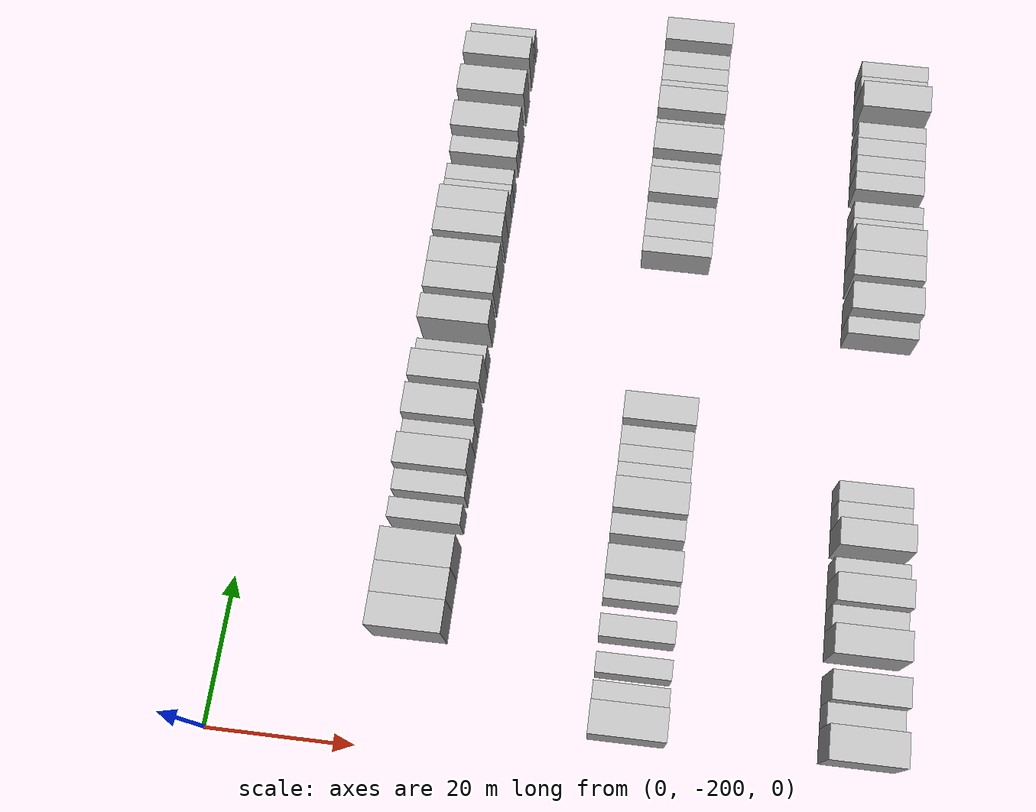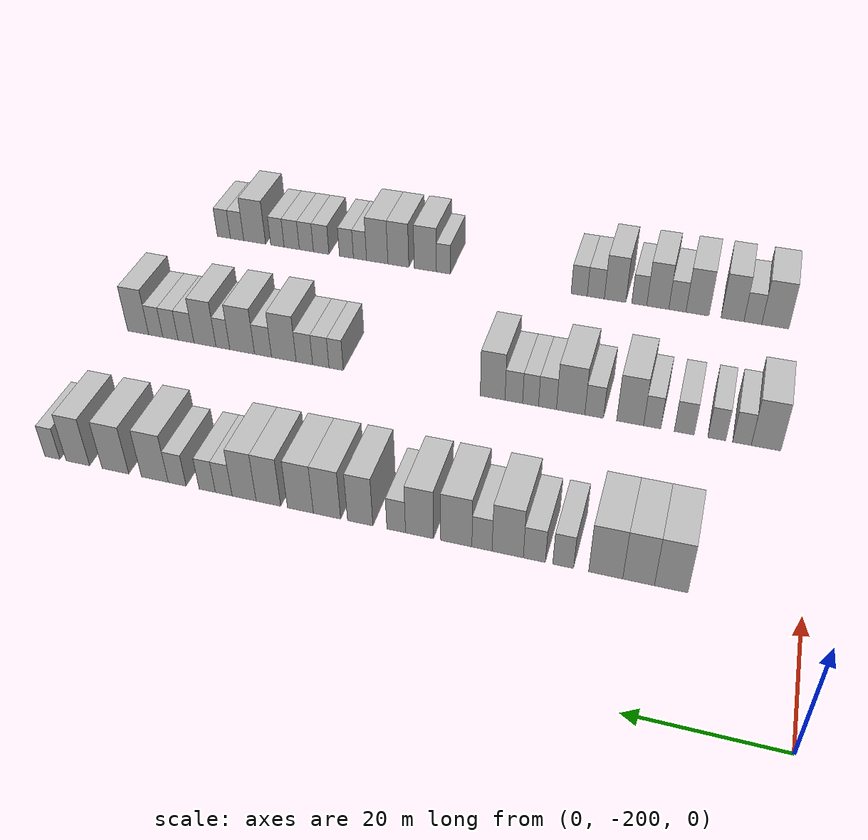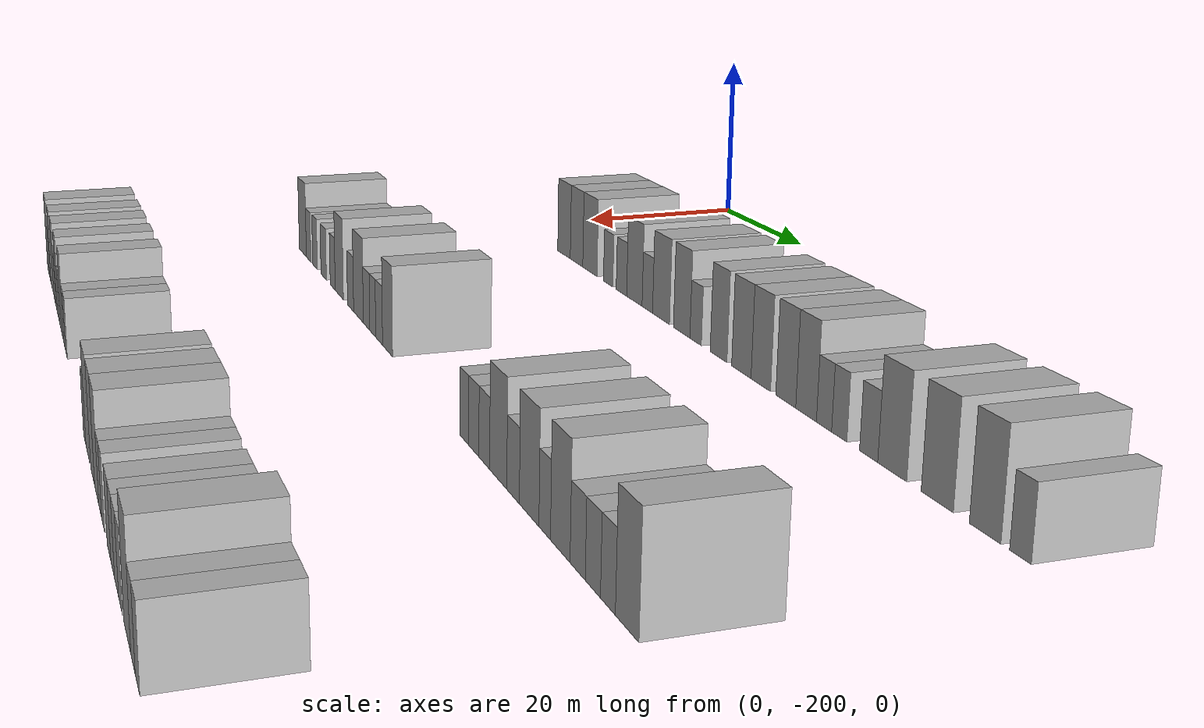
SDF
<sdf version="1.6">
 <world name="default">
  <model name="building_22">
   <static>1</static>
   <pose>25.0000 -183.5145 0 0.000000 0.000000 0.000000</pose>
   <link name="link">
    <pose>0 0 4.50 0 0 0</pose>
    <collision name="collision"><geometry><box><size>10.0000 4.3092 9.0000</size></box></geometry></collision>
    <visual name="visual">
     <cast_shadows>0</cast_shadows>
     <geometry><box><size>10.0000 4.3092 9.0000</size></box></geometry>
     <material>
      <script>
       <uri>model://HANNAS_wall/materials/scripts</uri>
       <uri>model://HANNAS_wall/materials/textures</uri>
       <name>vrc/HANNAS_wall</name>
      </script>
     </material>
    </visual>
   </link>
  </model>
  <model name="building_23">
   <static>1</static>
   <pose>25.0000 -179.2970 0 0.000000 0.000000 0.000000</pose>
   <link name="link">
    <pose>0 0 4.50 0 0 0</pose>
    <collision name="collision"><geometry><box><size>10.0000 4.1258 9.0000</size></box></geometry></collision>
    <visual name="visual">
     <cast_shadows>0</cast_shadows>
     <geometry><box><size>10.0000 4.1258 9.0000</size></box></geometry>
     <material>
      <script>
       <uri>model://HANNAS_wall/materials/scripts</uri>
       <uri>model://HANNAS_wall/materials/textures</uri>
       <name>vrc/HANNAS_wall</name>
      </script>
     </material>
    </visual>
   </link>
  </model>
  <model name="building_24">
   <static>1</static>
   <pose>25.0000 -174.9847 0 0.000000 0.000000 0.000000</pose>
   <link name="link">
    <pose>0 0 4.50 0 0 0</pose>
    <collision name="collision"><geometry><box><size>10.0000 4.4987 9.0000</size></box></geometry></collision>
    <visual name="visual">
     <cast_shadows>0</cast_shadows>
     <geometry><box><size>10.0000 4.4987 9.0000</size></box></geometry>
     <material>
      <script>
       <uri>model://HANNAS_wall/materials/scripts</uri>
       <uri>model://HANNAS_wall/materials/textures</uri>
       <name>vrc/HANNAS_wall</name>
      </script>
     </material>
    </visual>
   </link>
  </model>
  <model name="building_25">
   <static>1</static>
   <pose>25.0000 -169.3413 0 0.000000 0.000000 0.000000</pose>
   <link name="link">
    <pose>0 0 3.00 0 0 0</pose>
    <collision name="collision"><geometry><box><size>10.0000 2.7881 6.0000</size></box></geometry></collision>
    <visual name="visual">
     <cast_shadows>0</cast_shadows>
     <geometry><box><size>10.0000 2.7881 6.0000</size></box></geometry>
     <material>
      <script>
       <uri>model://HANNAS_wall/materials/scripts</uri>
       <uri>model://HANNAS_wall/materials/textures</uri>
       <name>vrc/HANNAS_wall</name>
      </script>
     </material>
    </visual>
   </link>
  </model>
  <model name="building_26">
   <static>1</static>
   <pose>25.0000 -165.4572 0 0.000000 0.000000 0.000000</pose>
   <link name="link">
    <pose>0 0 3.00 0 0 0</pose>
    <collision name="collision"><geometry><box><size>10.0000 2.9801 6.0000</size></box></geometry></collision>
    <visual name="visual">
     <cast_shadows>0</cast_shadows>
     <geometry><box><size>10.0000 2.9801 6.0000</size></box></geometry>
     <material>
      <script>
       <uri>model://HANNAS_wall/materials/scripts</uri>
       <uri>model://HANNAS_wall/materials/textures</uri>
       <name>vrc/HANNAS_wall</name>
      </script>
     </material>
    </visual>
   </link>
  </model>
  <model name="building_27">
   <static>1</static>
   <pose>25.0000 -161.8322 0 0.000000 0.000000 0.000000</pose>
   <link name="link">
    <pose>0 0 4.50 0 0 0</pose>
    <collision name="collision"><geometry><box><size>10.0000 4.2700 9.0000</size></box></geometry></collision>
    <visual name="visual">
     <cast_shadows>0</cast_shadows>
     <geometry><box><size>10.0000 4.2700 9.0000</size></box></geometry>
     <material>
      <script>
       <uri>model://HANNAS_wall/materials/scripts</uri>
       <uri>model://HANNAS_wall/materials/textures</uri>
       <name>vrc/HANNAS_wall</name>
      </script>
     </material>
    </visual>
   </link>
  </model>
  <model name="building_28">
   <static>1</static>
   <pose>25.0000 -158.3071 0 0.000000 0.000000 0.000000</pose>
   <link name="link">
    <pose>0 0 3.00 0 0 0</pose>
    <collision name="collision"><geometry><box><size>10.0000 2.7801 6.0000</size></box></geometry></collision>
    <visual name="visual">
     <cast_shadows>0</cast_shadows>
     <geometry><box><size>10.0000 2.7801 6.0000</size></box></geometry>
     <material>
      <script>
       <uri>model://HANNAS_wall/materials/scripts</uri>
       <uri>model://HANNAS_wall/materials/textures</uri>
       <name>vrc/HANNAS_wall</name>
      </script>
     </material>
    </visual>
   </link>
  </model>
  <model name="building_29">
   <static>1</static>
   <pose>25.0000 -154.7487 0 0.000000 0.000000 0.000000</pose>
   <link name="link">
    <pose>0 0 4.50 0 0 0</pose>
    <collision name="collision"><geometry><box><size>10.0000 4.3368 9.0000</size></box></geometry></collision>
    <visual name="visual">
     <cast_shadows>0</cast_shadows>
     <geometry><box><size>10.0000 4.3368 9.0000</size></box></geometry>
     <material>
      <script>
       <uri>model://HANNAS_wall/materials/scripts</uri>
       <uri>model://HANNAS_wall/materials/textures</uri>
       <name>vrc/HANNAS_wall</name>
      </script>
     </material>
    </visual>
   </link>
  </model>
  <model name="building_30">
   <static>1</static>
   <pose>25.0000 -149.6005 0 0.000000 0.000000 0.000000</pose>
   <link name="link">
    <pose>0 0 4.50 0 0 0</pose>
    <collision name="collision"><geometry><box><size>10.0000 3.9595 9.0000</size></box></geometry></collision>
    <visual name="visual">
     <cast_shadows>0</cast_shadows>
     <geometry><box><size>10.0000 3.9595 9.0000</size></box></geometry>
     <material>
      <script>
       <uri>model://HANNAS_wall/materials/scripts</uri>
       <uri>model://HANNAS_wall/materials/textures</uri>
       <name>vrc/HANNAS_wall</name>
      </script>
     </material>
    </visual>
   </link>
  </model>
  <model name="building_31">
   <static>1</static>
   <pose>25.0000 -146.2920 0 0.000000 0.000000 0.000000</pose>
   <link name="link">
    <pose>0 0 3.00 0 0 0</pose>
    <collision name="collision"><geometry><box><size>10.0000 2.6577 6.0000</size></box></geometry></collision>
    <visual name="visual">
     <cast_shadows>0</cast_shadows>
     <geometry><box><size>10.0000 2.6577 6.0000</size></box></geometry>
     <material>
      <script>
       <uri>model://HANNAS_wall/materials/scripts</uri>
       <uri>model://HANNAS_wall/materials/textures</uri>
       <name>vrc/HANNAS_wall</name>
      </script>
     </material>
    </visual>
   </link>
  </model>
  <model name="building_32">
   <static>1</static>
   <pose>25.0000 -141.1317 0 0.000000 0.000000 0.000000</pose>
   <link name="link">
    <pose>0 0 4.50 0 0 0</pose>
    <collision name="collision"><geometry><box><size>10.0000 3.6628 9.0000</size></box></geometry></collision>
    <visual name="visual">
     <cast_shadows>0</cast_shadows>
     <geometry><box><size>10.0000 3.6628 9.0000</size></box></geometry>
     <material>
      <script>
       <uri>model://HANNAS_wall/materials/scripts</uri>
       <uri>model://HANNAS_wall/materials/textures</uri>
       <name>vrc/HANNAS_wall</name>
      </script>
     </material>
    </visual>
   </link>
  </model>
  <model name="building_33">
   <static>1</static>
   <pose>25.0000 -136.3058 0 0.000000 0.000000 0.000000</pose>
   <link name="link">
    <pose>0 0 4.50 0 0 0</pose>
    <collision name="collision"><geometry><box><size>10.0000 3.9890 9.0000</size></box></geometry></collision>
    <visual name="visual">
     <cast_shadows>0</cast_shadows>
     <geometry><box><size>10.0000 3.9890 9.0000</size></box></geometry>
     <material>
      <script>
       <uri>model://HANNAS_wall/materials/scripts</uri>
       <uri>model://HANNAS_wall/materials/textures</uri>
       <name>vrc/HANNAS_wall</name>
      </script>
     </material>
    </visual>
   </link>
  </model>
  <model name="building_34">
   <static>1</static>
   <pose>25.0000 -132.3958 0 0.000000 0.000000 0.000000</pose>
   <link name="link">
    <pose>0 0 4.50 0 0 0</pose>
    <collision name="collision"><geometry><box><size>10.0000 3.8310 9.0000</size></box></geometry></collision>
    <visual name="visual">
     <cast_shadows>0</cast_shadows>
     <geometry><box><size>10.0000 3.8310 9.0000</size></box></geometry>
     <material>
      <script>
       <uri>model://HANNAS_wall/materials/scripts</uri>
       <uri>model://HANNAS_wall/materials/textures</uri>
       <name>vrc/HANNAS_wall</name>
      </script>
     </material>
    </visual>
   </link>
  </model>
  <model name="building_35">
   <static>1</static>
   <pose>25.0000 -127.6404 0 0.000000 0.000000 0.000000</pose>
   <link name="link">
    <pose>0 0 4.50 0 0 0</pose>
    <collision name="collision"><geometry><box><size>10.0000 3.6797 9.0000</size></box></geometry></collision>
    <visual name="visual">
     <cast_shadows>0</cast_shadows>
     <geometry><box><size>10.0000 3.6797 9.0000</size></box></geometry>
     <material>
      <script>
       <uri>model://HANNAS_wall/materials/scripts</uri>
       <uri>model://HANNAS_wall/materials/textures</uri>
       <name>vrc/HANNAS_wall</name>
      </script>
     </material>
    </visual>
   </link>
  </model>
  <model name="building_36">
   <static>1</static>
   <pose>25.0000 -123.9842 0 0.000000 0.000000 0.000000</pose>
   <link name="link">
    <pose>0 0 4.50 0 0 0</pose>
    <collision name="collision"><geometry><box><size>10.0000 3.6327 9.0000</size></box></geometry></collision>
    <visual name="visual">
     <cast_shadows>0</cast_shadows>
     <geometry><box><size>10.0000 3.6327 9.0000</size></box></geometry>
     <material>
      <script>
       <uri>model://HANNAS_wall/materials/scripts</uri>
       <uri>model://HANNAS_wall/materials/textures</uri>
       <name>vrc/HANNAS_wall</name>
      </script>
     </material>
    </visual>
   </link>
  </model>
  <model name="building_37">
   <static>1</static>
   <pose>25.0000 -120.8901 0 0.000000 0.000000 0.000000</pose>
   <link name="link">
    <pose>0 0 3.00 0 0 0</pose>
    <collision name="collision"><geometry><box><size>10.0000 2.5555 6.0000</size></box></geometry></collision>
    <visual name="visual">
     <cast_shadows>0</cast_shadows>
     <geometry><box><size>10.0000 2.5555 6.0000</size></box></geometry>
     <material>
      <script>
       <uri>model://HANNAS_wall/materials/scripts</uri>
       <uri>model://HANNAS_wall/materials/textures</uri>
       <name>vrc/HANNAS_wall</name>
      </script>
     </material>
    </visual>
   </link>
  </model>
  <model name="building_38">
   <static>1</static>
   <pose>25.0000 -118.3707 0 0.000000 0.000000 0.000000</pose>
   <link name="link">
    <pose>0 0 3.00 0 0 0</pose>
    <collision name="collision"><geometry><box><size>10.0000 2.4834 6.0000</size></box></geometry></collision>
    <visual name="visual">
     <cast_shadows>0</cast_shadows>
     <geometry><box><size>10.0000 2.4834 6.0000</size></box></geometry>
     <material>
      <script>
       <uri>model://HANNAS_wall/materials/scripts</uri>
       <uri>model://HANNAS_wall/materials/textures</uri>
       <name>vrc/HANNAS_wall</name>
      </script>
     </material>
    </visual>
   </link>
  </model>
  <model name="building_39">
   <static>1</static>
   <pose>25.0000 -113.7421 0 0.000000 0.000000 0.000000</pose>
   <link name="link">
    <pose>0 0 3.00 0 0 0</pose>
    <collision name="collision"><geometry><box><size>10.0000 2.7738 6.0000</size></box></geometry></collision>
    <visual name="visual">
     <cast_shadows>0</cast_shadows>
     <geometry><box><size>10.0000 2.7738 6.0000</size></box></geometry>
     <material>
      <script>
       <uri>model://HANNAS_wall/materials/scripts</uri>
       <uri>model://HANNAS_wall/materials/textures</uri>
       <name>vrc/HANNAS_wall</name>
      </script>
     </material>
    </visual>
   </link>
  </model>
  <model name="building_40">
   <static>1</static>
   <pose>25.0000 -110.2601 0 0.000000 0.000000 0.000000</pose>
   <link name="link">
    <pose>0 0 4.50 0 0 0</pose>
    <collision name="collision"><geometry><box><size>10.0000 4.1903 9.0000</size></box></geometry></collision>
    <visual name="visual">
     <cast_shadows>0</cast_shadows>
     <geometry><box><size>10.0000 4.1903 9.0000</size></box></geometry>
     <material>
      <script>
       <uri>model://HANNAS_wall/materials/scripts</uri>
       <uri>model://HANNAS_wall/materials/textures</uri>
       <name>vrc/HANNAS_wall</name>
      </script>
     </material>
    </visual>
   </link>
  </model>
  <model name="building_41">
   <static>1</static>
   <pose>25.0000 -104.0432 0 0.000000 0.000000 0.000000</pose>
   <link name="link">
    <pose>0 0 4.50 0 0 0</pose>
    <collision name="collision"><geometry><box><size>10.0000 4.2435 9.0000</size></box></geometry></collision>
    <visual name="visual">
     <cast_shadows>0</cast_shadows>
     <geometry><box><size>10.0000 4.2435 9.0000</size></box></geometry>
     <material>
      <script>
       <uri>model://HANNAS_wall/materials/scripts</uri>
       <uri>model://HANNAS_wall/materials/textures</uri>
       <name>vrc/HANNAS_wall</name>
      </script>
     </material>
    </visual>
   </link>
  </model>
  <model name="building_42">
   <static>1</static>
   <pose>25.0000 -98.0286 0 0.000000 0.000000 0.000000</pose>
   <link name="link">
    <pose>0 0 4.50 0 0 0</pose>
    <collision name="collision"><geometry><box><size>10.0000 3.7858 9.0000</size></box></geometry></collision>
    <visual name="visual">
     <cast_shadows>0</cast_shadows>
     <geometry><box><size>10.0000 3.7858 9.0000</size></box></geometry>
     <material>
      <script>
       <uri>model://HANNAS_wall/materials/scripts</uri>
       <uri>model://HANNAS_wall/materials/textures</uri>
       <name>vrc/HANNAS_wall</name>
      </script>
     </material>
    </visual>
   </link>
  </model>
  <model name="building_43">
   <static>1</static>
   <pose>25.0000 -93.9180 0 0.000000 0.000000 0.000000</pose>
   <link name="link">
    <pose>0 0 3.00 0 0 0</pose>
    <collision name="collision"><geometry><box><size>10.0000 2.4353 6.0000</size></box></geometry></collision>
    <visual name="visual">
     <cast_shadows>0</cast_shadows>
     <geometry><box><size>10.0000 2.4353 6.0000</size></box></geometry>
     <material>
      <script>
       <uri>model://HANNAS_wall/materials/scripts</uri>
       <uri>model://HANNAS_wall/materials/textures</uri>
       <name>vrc/HANNAS_wall</name>
      </script>
     </material>
    </visual>
   </link>
  </model>
  <model name="building_165">
   <static>1</static>
   <pose>55.0000 -193.5986 0 0.000000 0.000000 0.000000</pose>
   <link name="link">
    <pose>0 0 4.50 0 0 0</pose>
    <collision name="collision"><geometry><box><size>10.0000 4.2606 9.0000</size></box></geometry></collision>
    <visual name="visual">
     <cast_shadows>0</cast_shadows>
     <geometry><box><size>10.0000 4.2606 9.0000</size></box></geometry>
     <material>
      <script>
       <uri>model://HANNAS_wall/materials/scripts</uri>
       <uri>model://HANNAS_wall/materials/textures</uri>
       <name>vrc/HANNAS_wall</name>
      </script>
     </material>
    </visual>
   </link>
  </model>
  <model name="building_166">
   <static>1</static>
   <pose>55.0000 -190.1211 0 0.000000 0.000000 0.000000</pose>
   <link name="link">
    <pose>0 0 3.00 0 0 0</pose>
    <collision name="collision"><geometry><box><size>10.0000 2.6943 6.0000</size></box></geometry></collision>
    <visual name="visual">
     <cast_shadows>0</cast_shadows>
     <geometry><box><size>10.0000 2.6943 6.0000</size></box></geometry>
     <material>
      <script>
       <uri>model://HANNAS_wall/materials/scripts</uri>
       <uri>model://HANNAS_wall/materials/textures</uri>
       <name>vrc/HANNAS_wall</name>
      </script>
     </material>
    </visual>
   </link>
  </model>
  <model name="building_167">
   <static>1</static>
   <pose>55.0000 -186.4602 0 0.000000 0.000000 0.000000</pose>
   <link name="link">
    <pose>0 0 3.00 0 0 0</pose>
    <collision name="collision"><geometry><box><size>10.0000 2.6276 6.0000</size></box></geometry></collision>
    <visual name="visual">
     <cast_shadows>0</cast_shadows>
     <geometry><box><size>10.0000 2.6276 6.0000</size></box></geometry>
     <material>
      <script>
       <uri>model://HANNAS_wall/materials/scripts</uri>
       <uri>model://HANNAS_wall/materials/textures</uri>
       <name>vrc/HANNAS_wall</name>
      </script>
     </material>
    </visual>
   </link>
  </model>
  <model name="building_168">
   <static>1</static>
   <pose>55.0000 -181.6680 0 0.000000 0.000000 0.000000</pose>
   <link name="link">
    <pose>0 0 3.00 0 0 0</pose>
    <collision name="collision"><geometry><box><size>10.0000 2.9568 6.0000</size></box></geometry></collision>
    <visual name="visual">
     <cast_shadows>0</cast_shadows>
     <geometry><box><size>10.0000 2.9568 6.0000</size></box></geometry>
     <material>
      <script>
       <uri>model://HANNAS_wall/materials/scripts</uri>
       <uri>model://HANNAS_wall/materials/textures</uri>
       <name>vrc/HANNAS_wall</name>
      </script>
     </material>
    </visual>
   </link>
  </model>
  <model name="building_169">
   <static>1</static>
   <pose>55.0000 -176.8998 0 0.000000 0.000000 0.000000</pose>
   <link name="link">
    <pose>0 0 3.00 0 0 0</pose>
    <collision name="collision"><geometry><box><size>10.0000 2.5796 6.0000</size></box></geometry></collision>
    <visual name="visual">
     <cast_shadows>0</cast_shadows>
     <geometry><box><size>10.0000 2.5796 6.0000</size></box></geometry>
     <material>
      <script>
       <uri>model://HANNAS_wall/materials/scripts</uri>
       <uri>model://HANNAS_wall/materials/textures</uri>
       <name>vrc/HANNAS_wall</name>
      </script>
     </material>
    </visual>
   </link>
  </model>
  <model name="building_170">
   <static>1</static>
   <pose>55.0000 -173.5760 0 0.000000 0.000000 0.000000</pose>
   <link name="link">
    <pose>0 0 4.50 0 0 0</pose>
    <collision name="collision"><geometry><box><size>10.0000 4.0680 9.0000</size></box></geometry></collision>
    <visual name="visual">
     <cast_shadows>0</cast_shadows>
     <geometry><box><size>10.0000 4.0680 9.0000</size></box></geometry>
     <material>
      <script>
       <uri>model://HANNAS_wall/materials/scripts</uri>
       <uri>model://HANNAS_wall/materials/textures</uri>
       <name>vrc/HANNAS_wall</name>
      </script>
     </material>
    </visual>
   </link>
  </model>
  <model name="building_171">
   <static>1</static>
   <pose>55.0000 -168.1138 0 0.000000 0.000000 0.000000</pose>
   <link name="link">
    <pose>0 0 3.00 0 0 0</pose>
    <collision name="collision"><geometry><box><size>10.0000 2.8563 6.0000</size></box></geometry></collision>
    <visual name="visual">
     <cast_shadows>0</cast_shadows>
     <geometry><box><size>10.0000 2.8563 6.0000</size></box></geometry>
     <material>
      <script>
       <uri>model://HANNAS_wall/materials/scripts</uri>
       <uri>model://HANNAS_wall/materials/textures</uri>
       <name>vrc/HANNAS_wall</name>
      </script>
     </material>
    </visual>
   </link>
  </model>
  <model name="building_172">
   <static>1</static>
   <pose>55.0000 -164.4946 0 0.000000 0.000000 0.000000</pose>
   <link name="link">
    <pose>0 0 4.50 0 0 0</pose>
    <collision name="collision"><geometry><box><size>10.0000 4.3822 9.0000</size></box></geometry></collision>
    <visual name="visual">
     <cast_shadows>0</cast_shadows>
     <geometry><box><size>10.0000 4.3822 9.0000</size></box></geometry>
     <material>
      <script>
       <uri>model://HANNAS_wall/materials/scripts</uri>
       <uri>model://HANNAS_wall/materials/textures</uri>
       <name>vrc/HANNAS_wall</name>
      </script>
     </material>
    </visual>
   </link>
  </model>
  <model name="building_173">
   <static>1</static>
   <pose>55.0000 -160.9096 0 0.000000 0.000000 0.000000</pose>
   <link name="link">
    <pose>0 0 3.00 0 0 0</pose>
    <collision name="collision"><geometry><box><size>10.0000 2.7878 6.0000</size></box></geometry></collision>
    <visual name="visual">
     <cast_shadows>0</cast_shadows>
     <geometry><box><size>10.0000 2.7878 6.0000</size></box></geometry>
     <material>
      <script>
       <uri>model://HANNAS_wall/materials/scripts</uri>
       <uri>model://HANNAS_wall/materials/textures</uri>
       <name>vrc/HANNAS_wall</name>
      </script>
     </material>
    </visual>
   </link>
  </model>
  <model name="building_174">
   <static>1</static>
   <pose>55.0000 -158.2679 0 0.000000 0.000000 0.000000</pose>
   <link name="link">
    <pose>0 0 3.00 0 0 0</pose>
    <collision name="collision"><geometry><box><size>10.0000 2.4956 6.0000</size></box></geometry></collision>
    <visual name="visual">
     <cast_shadows>0</cast_shadows>
     <geometry><box><size>10.0000 2.4956 6.0000</size></box></geometry>
     <material>
      <script>
       <uri>model://HANNAS_wall/materials/scripts</uri>
       <uri>model://HANNAS_wall/materials/textures</uri>
       <name>vrc/HANNAS_wall</name>
      </script>
     </material>
    </visual>
   </link>
  </model>
  <model name="building_175">
   <static>1</static>
   <pose>55.0000 -155.6390 0 0.000000 0.000000 0.000000</pose>
   <link name="link">
    <pose>0 0 3.00 0 0 0</pose>
    <collision name="collision"><geometry><box><size>10.0000 2.7623 6.0000</size></box></geometry></collision>
    <visual name="visual">
     <cast_shadows>0</cast_shadows>
     <geometry><box><size>10.0000 2.7623 6.0000</size></box></geometry>
     <material>
      <script>
       <uri>model://HANNAS_wall/materials/scripts</uri>
       <uri>model://HANNAS_wall/materials/textures</uri>
       <name>vrc/HANNAS_wall</name>
      </script>
     </material>
    </visual>
   </link>
  </model>
  <model name="building_176">
   <static>1</static>
   <pose>55.0000 -152.2984 0 0.000000 0.000000 0.000000</pose>
   <link name="link">
    <pose>0 0 4.50 0 0 0</pose>
    <collision name="collision"><geometry><box><size>10.0000 3.9187 9.0000</size></box></geometry></collision>
    <visual name="visual">
     <cast_shadows>0</cast_shadows>
     <geometry><box><size>10.0000 3.9187 9.0000</size></box></geometry>
     <material>
      <script>
       <uri>model://HANNAS_wall/materials/scripts</uri>
       <uri>model://HANNAS_wall/materials/textures</uri>
       <name>vrc/HANNAS_wall</name>
      </script>
     </material>
    </visual>
   </link>
  </model>
  <model name="building_177">
   <static>1</static>
   <pose>55.0000 -126.7236 0 0.000000 0.000000 0.000000</pose>
   <link name="link">
    <pose>0 0 3.00 0 0 0</pose>
    <collision name="collision"><geometry><box><size>10.0000 2.4103 6.0000</size></box></geometry></collision>
    <visual name="visual">
     <cast_shadows>0</cast_shadows>
     <geometry><box><size>10.0000 2.4103 6.0000</size></box></geometry>
     <material>
      <script>
       <uri>model://HANNAS_wall/materials/scripts</uri>
       <uri>model://HANNAS_wall/materials/textures</uri>
       <name>vrc/HANNAS_wall</name>
      </script>
     </material>
    </visual>
   </link>
  </model>
  <model name="building_178">
   <static>1</static>
   <pose>55.0000 -124.1350 0 0.000000 0.000000 0.000000</pose>
   <link name="link">
    <pose>0 0 3.00 0 0 0</pose>
    <collision name="collision"><geometry><box><size>10.0000 2.7670 6.0000</size></box></geometry></collision>
    <visual name="visual">
     <cast_shadows>0</cast_shadows>
     <geometry><box><size>10.0000 2.7670 6.0000</size></box></geometry>
     <material>
      <script>
       <uri>model://HANNAS_wall/materials/scripts</uri>
       <uri>model://HANNAS_wall/materials/textures</uri>
       <name>vrc/HANNAS_wall</name>
      </script>
     </material>
    </visual>
   </link>
  </model>
  <model name="building_179">
   <static>1</static>
   <pose>55.0000 -121.3437 0 0.000000 0.000000 0.000000</pose>
   <link name="link">
    <pose>0 0 3.00 0 0 0</pose>
    <collision name="collision"><geometry><box><size>10.0000 2.8155 6.0000</size></box></geometry></collision>
    <visual name="visual">
     <cast_shadows>0</cast_shadows>
     <geometry><box><size>10.0000 2.8155 6.0000</size></box></geometry>
     <material>
      <script>
       <uri>model://HANNAS_wall/materials/scripts</uri>
       <uri>model://HANNAS_wall/materials/textures</uri>
       <name>vrc/HANNAS_wall</name>
      </script>
     </material>
    </visual>
   </link>
  </model>
  <model name="building_180">
   <static>1</static>
   <pose>55.0000 -117.8213 0 0.000000 0.000000 0.000000</pose>
   <link name="link">
    <pose>0 0 4.50 0 0 0</pose>
    <collision name="collision"><geometry><box><size>10.0000 4.2294 9.0000</size></box></geometry></collision>
    <visual name="visual">
     <cast_shadows>0</cast_shadows>
     <geometry><box><size>10.0000 4.2294 9.0000</size></box></geometry>
     <material>
      <script>
       <uri>model://HANNAS_wall/materials/scripts</uri>
       <uri>model://HANNAS_wall/materials/textures</uri>
       <name>vrc/HANNAS_wall</name>
      </script>
     </material>
    </visual>
   </link>
  </model>
  <model name="building_181">
   <static>1</static>
   <pose>55.0000 -114.2362 0 0.000000 0.000000 0.000000</pose>
   <link name="link">
    <pose>0 0 3.00 0 0 0</pose>
    <collision name="collision"><geometry><box><size>10.0000 2.9407 6.0000</size></box></geometry></collision>
    <visual name="visual">
     <cast_shadows>0</cast_shadows>
     <geometry><box><size>10.0000 2.9407 6.0000</size></box></geometry>
     <material>
      <script>
       <uri>model://HANNAS_wall/materials/scripts</uri>
       <uri>model://HANNAS_wall/materials/textures</uri>
       <name>vrc/HANNAS_wall</name>
      </script>
     </material>
    </visual>
   </link>
  </model>
  <model name="building_182">
   <static>1</static>
   <pose>55.0000 -110.6020 0 0.000000 0.000000 0.000000</pose>
   <link name="link">
    <pose>0 0 4.50 0 0 0</pose>
    <collision name="collision"><geometry><box><size>10.0000 4.3277 9.0000</size></box></geometry></collision>
    <visual name="visual">
     <cast_shadows>0</cast_shadows>
     <geometry><box><size>10.0000 4.3277 9.0000</size></box></geometry>
     <material>
      <script>
       <uri>model://HANNAS_wall/materials/scripts</uri>
       <uri>model://HANNAS_wall/materials/textures</uri>
       <name>vrc/HANNAS_wall</name>
      </script>
     </material>
    </visual>
   </link>
  </model>
  <model name="building_183">
   <static>1</static>
   <pose>55.0000 -107.2259 0 0.000000 0.000000 0.000000</pose>
   <link name="link">
    <pose>0 0 3.00 0 0 0</pose>
    <collision name="collision"><geometry><box><size>10.0000 2.4245 6.0000</size></box></geometry></collision>
    <visual name="visual">
     <cast_shadows>0</cast_shadows>
     <geometry><box><size>10.0000 2.4245 6.0000</size></box></geometry>
     <material>
      <script>
       <uri>model://HANNAS_wall/materials/scripts</uri>
       <uri>model://HANNAS_wall/materials/textures</uri>
       <name>vrc/HANNAS_wall</name>
      </script>
     </material>
    </visual>
   </link>
  </model>
  <model name="building_184">
   <static>1</static>
   <pose>55.0000 -104.0643 0 0.000000 0.000000 0.000000</pose>
   <link name="link">
    <pose>0 0 4.50 0 0 0</pose>
    <collision name="collision"><geometry><box><size>10.0000 3.8986 9.0000</size></box></geometry></collision>
    <visual name="visual">
     <cast_shadows>0</cast_shadows>
     <geometry><box><size>10.0000 3.8986 9.0000</size></box></geometry>
     <material>
      <script>
       <uri>model://HANNAS_wall/materials/scripts</uri>
       <uri>model://HANNAS_wall/materials/textures</uri>
       <name>vrc/HANNAS_wall</name>
      </script>
     </material>
    </visual>
   </link>
  </model>
  <model name="building_185">
   <static>1</static>
   <pose>55.0000 -100.6877 0 0.000000 0.000000 0.000000</pose>
   <link name="link">
    <pose>0 0 3.00 0 0 0</pose>
    <collision name="collision"><geometry><box><size>10.0000 2.8546 6.0000</size></box></geometry></collision>
    <visual name="visual">
     <cast_shadows>0</cast_shadows>
     <geometry><box><size>10.0000 2.8546 6.0000</size></box></geometry>
     <material>
      <script>
       <uri>model://HANNAS_wall/materials/scripts</uri>
       <uri>model://HANNAS_wall/materials/textures</uri>
       <name>vrc/HANNAS_wall</name>
      </script>
     </material>
    </visual>
   </link>
  </model>
  <model name="building_186">
   <static>1</static>
   <pose>55.0000 -97.8958 0 0.000000 0.000000 0.000000</pose>
   <link name="link">
    <pose>0 0 3.00 0 0 0</pose>
    <collision name="collision"><geometry><box><size>10.0000 2.7294 6.0000</size></box></geometry></collision>
    <visual name="visual">
     <cast_shadows>0</cast_shadows>
     <geometry><box><size>10.0000 2.7294 6.0000</size></box></geometry>
     <material>
      <script>
       <uri>model://HANNAS_wall/materials/scripts</uri>
       <uri>model://HANNAS_wall/materials/textures</uri>
       <name>vrc/HANNAS_wall</name>
      </script>
     </material>
    </visual>
   </link>
  </model>
  <model name="building_187">
   <static>1</static>
   <pose>55.0000 -95.2564 0 0.000000 0.000000 0.000000</pose>
   <link name="link">
    <pose>0 0 3.00 0 0 0</pose>
    <collision name="collision"><geometry><box><size>10.0000 2.5494 6.0000</size></box></geometry></collision>
    <visual name="visual">
     <cast_shadows>0</cast_shadows>
     <geometry><box><size>10.0000 2.5494 6.0000</size></box></geometry>
     <material>
      <script>
       <uri>model://HANNAS_wall/materials/scripts</uri>
       <uri>model://HANNAS_wall/materials/textures</uri>
       <name>vrc/HANNAS_wall</name>
      </script>
     </material>
    </visual>
   </link>
  </model>
  <model name="building_188">
   <static>1</static>
   <pose>55.0000 -92.0777 0 0.000000 0.000000 0.000000</pose>
   <link name="link">
    <pose>0 0 4.50 0 0 0</pose>
    <collision name="collision"><geometry><box><size>10.0000 3.8080 9.0000</size></box></geometry></collision>
    <visual name="visual">
     <cast_shadows>0</cast_shadows>
     <geometry><box><size>10.0000 3.8080 9.0000</size></box></geometry>
     <material>
      <script>
       <uri>model://HANNAS_wall/materials/scripts</uri>
       <uri>model://HANNAS_wall/materials/textures</uri>
       <name>vrc/HANNAS_wall</name>
      </script>
     </material>
    </visual>
   </link>
  </model>
  <model name="building_300">
   <static>1</static>
   <pose>85.0000 -193.1781 0 0.000000 0.000000 0.000000</pose>
   <link name="link">
    <pose>0 0 4.50 0 0 0</pose>
    <collision name="collision"><geometry><box><size>10.0000 4.4012 9.0000</size></box></geometry></collision>
    <visual name="visual">
     <cast_shadows>0</cast_shadows>
     <geometry><box><size>10.0000 4.4012 9.0000</size></box></geometry>
     <material>
      <script>
       <uri>model://HANNAS_wall/materials/scripts</uri>
       <uri>model://HANNAS_wall/materials/textures</uri>
       <name>vrc/HANNAS_wall</name>
      </script>
     </material>
    </visual>
   </link>
  </model>
  <model name="building_301">
   <static>1</static>
   <pose>85.0000 -189.5133 0 0.000000 0.000000 0.000000</pose>
   <link name="link">
    <pose>0 0 3.00 0 0 0</pose>
    <collision name="collision"><geometry><box><size>10.0000 2.9284 6.0000</size></box></geometry></collision>
    <visual name="visual">
     <cast_shadows>0</cast_shadows>
     <geometry><box><size>10.0000 2.9284 6.0000</size></box></geometry>
     <material>
      <script>
       <uri>model://HANNAS_wall/materials/scripts</uri>
       <uri>model://HANNAS_wall/materials/textures</uri>
       <name>vrc/HANNAS_wall</name>
      </script>
     </material>
    </visual>
   </link>
  </model>
  <model name="building_302">
   <static>1</static>
   <pose>85.0000 -186.1675 0 0.000000 0.000000 0.000000</pose>
   <link name="link">
    <pose>0 0 4.50 0 0 0</pose>
    <collision name="collision"><geometry><box><size>10.0000 3.7632 9.0000</size></box></geometry></collision>
    <visual name="visual">
     <cast_shadows>0</cast_shadows>
     <geometry><box><size>10.0000 3.7632 9.0000</size></box></geometry>
     <material>
      <script>
       <uri>model://HANNAS_wall/materials/scripts</uri>
       <uri>model://HANNAS_wall/materials/textures</uri>
       <name>vrc/HANNAS_wall</name>
      </script>
     </material>
    </visual>
   </link>
  </model>
  <model name="building_303">
   <static>1</static>
   <pose>85.0000 -180.3546 0 0.000000 0.000000 0.000000</pose>
   <link name="link">
    <pose>0 0 4.50 0 0 0</pose>
    <collision name="collision"><geometry><box><size>10.0000 3.8625 9.0000</size></box></geometry></collision>
    <visual name="visual">
     <cast_shadows>0</cast_shadows>
     <geometry><box><size>10.0000 3.8625 9.0000</size></box></geometry>
     <material>
      <script>
       <uri>model://HANNAS_wall/materials/scripts</uri>
       <uri>model://HANNAS_wall/materials/textures</uri>
       <name>vrc/HANNAS_wall</name>
      </script>
     </material>
    </visual>
   </link>
  </model>
  <model name="building_304">
   <static>1</static>
   <pose>85.0000 -176.9791 0 0.000000 0.000000 0.000000</pose>
   <link name="link">
    <pose>0 0 3.00 0 0 0</pose>
    <collision name="collision"><geometry><box><size>10.0000 2.8885 6.0000</size></box></geometry></collision>
    <visual name="visual">
     <cast_shadows>0</cast_shadows>
     <geometry><box><size>10.0000 2.8885 6.0000</size></box></geometry>
     <material>
      <script>
       <uri>model://HANNAS_wall/materials/scripts</uri>
       <uri>model://HANNAS_wall/materials/textures</uri>
       <name>vrc/HANNAS_wall</name>
      </script>
     </material>
    </visual>
   </link>
  </model>
  <model name="building_305">
   <static>1</static>
   <pose>85.0000 -173.6664 0 0.000000 0.000000 0.000000</pose>
   <link name="link">
    <pose>0 0 4.50 0 0 0</pose>
    <collision name="collision"><geometry><box><size>10.0000 3.7370 9.0000</size></box></geometry></collision>
    <visual name="visual">
     <cast_shadows>0</cast_shadows>
     <geometry><box><size>10.0000 3.7370 9.0000</size></box></geometry>
     <material>
      <script>
       <uri>model://HANNAS_wall/materials/scripts</uri>
       <uri>model://HANNAS_wall/materials/textures</uri>
       <name>vrc/HANNAS_wall</name>
      </script>
     </material>
    </visual>
   </link>
  </model>
  <model name="building_306">
   <static>1</static>
   <pose>85.0000 -170.5135 0 0.000000 0.000000 0.000000</pose>
   <link name="link">
    <pose>0 0 3.00 0 0 0</pose>
    <collision name="collision"><geometry><box><size>10.0000 2.5687 6.0000</size></box></geometry></collision>
    <visual name="visual">
     <cast_shadows>0</cast_shadows>
     <geometry><box><size>10.0000 2.5687 6.0000</size></box></geometry>
     <material>
      <script>
       <uri>model://HANNAS_wall/materials/scripts</uri>
       <uri>model://HANNAS_wall/materials/textures</uri>
       <name>vrc/HANNAS_wall</name>
      </script>
     </material>
    </visual>
   </link>
  </model>
  <model name="building_307">
   <static>1</static>
   <pose>85.0000 -166.3787 0 0.000000 0.000000 0.000000</pose>
   <link name="link">
    <pose>0 0 4.50 0 0 0</pose>
    <collision name="collision"><geometry><box><size>10.0000 3.7009 9.0000</size></box></geometry></collision>
    <visual name="visual">
     <cast_shadows>0</cast_shadows>
     <geometry><box><size>10.0000 3.7009 9.0000</size></box></geometry>
     <material>
      <script>
       <uri>model://HANNAS_wall/materials/scripts</uri>
       <uri>model://HANNAS_wall/materials/textures</uri>
       <name>vrc/HANNAS_wall</name>
      </script>
     </material>
    </visual>
   </link>
  </model>
  <model name="building_308">
   <static>1</static>
   <pose>85.0000 -163.0462 0 0.000000 0.000000 0.000000</pose>
   <link name="link">
    <pose>0 0 3.00 0 0 0</pose>
    <collision name="collision"><geometry><box><size>10.0000 2.9641 6.0000</size></box></geometry></collision>
    <visual name="visual">
     <cast_shadows>0</cast_shadows>
     <geometry><box><size>10.0000 2.9641 6.0000</size></box></geometry>
     <material>
      <script>
       <uri>model://HANNAS_wall/materials/scripts</uri>
       <uri>model://HANNAS_wall/materials/textures</uri>
       <name>vrc/HANNAS_wall</name>
      </script>
     </material>
    </visual>
   </link>
  </model>
  <model name="building_309">
   <static>1</static>
   <pose>85.0000 -160.1606 0 0.000000 0.000000 0.000000</pose>
   <link name="link">
    <pose>0 0 3.00 0 0 0</pose>
    <collision name="collision"><geometry><box><size>10.0000 2.8070 6.0000</size></box></geometry></collision>
    <visual name="visual">
     <cast_shadows>0</cast_shadows>
     <geometry><box><size>10.0000 2.8070 6.0000</size></box></geometry>
     <material>
      <script>
       <uri>model://HANNAS_wall/materials/scripts</uri>
       <uri>model://HANNAS_wall/materials/textures</uri>
       <name>vrc/HANNAS_wall</name>
      </script>
     </material>
    </visual>
   </link>
  </model>
  <model name="building_310">
   <static>1</static>
   <pose>85.0000 -135.8937 0 0.000000 0.000000 0.000000</pose>
   <link name="link">
    <pose>0 0 3.00 0 0 0</pose>
    <collision name="collision"><geometry><box><size>10.0000 2.5756 6.0000</size></box></geometry></collision>
    <visual name="visual">
     <cast_shadows>0</cast_shadows>
     <geometry><box><size>10.0000 2.5756 6.0000</size></box></geometry>
     <material>
      <script>
       <uri>model://HANNAS_wall/materials/scripts</uri>
       <uri>model://HANNAS_wall/materials/textures</uri>
       <name>vrc/HANNAS_wall</name>
      </script>
     </material>
    </visual>
   </link>
  </model>
  <model name="building_311">
   <static>1</static>
   <pose>85.0000 -132.5577 0 0.000000 0.000000 0.000000</pose>
   <link name="link">
    <pose>0 0 4.50 0 0 0</pose>
    <collision name="collision"><geometry><box><size>10.0000 4.0964 9.0000</size></box></geometry></collision>
    <visual name="visual">
     <cast_shadows>0</cast_shadows>
     <geometry><box><size>10.0000 4.0964 9.0000</size></box></geometry>
     <material>
      <script>
       <uri>model://HANNAS_wall/materials/scripts</uri>
       <uri>model://HANNAS_wall/materials/textures</uri>
       <name>vrc/HANNAS_wall</name>
      </script>
     </material>
    </visual>
   </link>
  </model>
  <model name="building_312">
   <static>1</static>
   <pose>85.0000 -127.5515 0 0.000000 0.000000 0.000000</pose>
   <link name="link">
    <pose>0 0 4.50 0 0 0</pose>
    <collision name="collision"><geometry><box><size>10.0000 3.9161 9.0000</size></box></geometry></collision>
    <visual name="visual">
     <cast_shadows>0</cast_shadows>
     <geometry><box><size>10.0000 3.9161 9.0000</size></box></geometry>
     <material>
      <script>
       <uri>model://HANNAS_wall/materials/scripts</uri>
       <uri>model://HANNAS_wall/materials/textures</uri>
       <name>vrc/HANNAS_wall</name>
      </script>
     </material>
    </visual>
   </link>
  </model>
  <model name="building_313">
   <static>1</static>
   <pose>85.0000 -123.5883 0 0.000000 0.000000 0.000000</pose>
   <link name="link">
    <pose>0 0 4.50 0 0 0</pose>
    <collision name="collision"><geometry><box><size>10.0000 4.0104 9.0000</size></box></geometry></collision>
    <visual name="visual">
     <cast_shadows>0</cast_shadows>
     <geometry><box><size>10.0000 4.0104 9.0000</size></box></geometry>
     <material>
      <script>
       <uri>model://HANNAS_wall/materials/scripts</uri>
       <uri>model://HANNAS_wall/materials/textures</uri>
       <name>vrc/HANNAS_wall</name>
      </script>
     </material>
    </visual>
   </link>
  </model>
  <model name="building_314">
   <static>1</static>
   <pose>85.0000 -120.3392 0 0.000000 0.000000 0.000000</pose>
   <link name="link">
    <pose>0 0 3.00 0 0 0</pose>
    <collision name="collision"><geometry><box><size>10.0000 2.4877 6.0000</size></box></geometry></collision>
    <visual name="visual">
     <cast_shadows>0</cast_shadows>
     <geometry><box><size>10.0000 2.4877 6.0000</size></box></geometry>
     <material>
      <script>
       <uri>model://HANNAS_wall/materials/scripts</uri>
       <uri>model://HANNAS_wall/materials/textures</uri>
       <name>vrc/HANNAS_wall</name>
      </script>
     </material>
    </visual>
   </link>
  </model>
  <model name="building_315">
   <static>1</static>
   <pose>85.0000 -117.7700 0 0.000000 0.000000 0.000000</pose>
   <link name="link">
    <pose>0 0 3.00 0 0 0</pose>
    <collision name="collision"><geometry><box><size>10.0000 2.6508 6.0000</size></box></geometry></collision>
    <visual name="visual">
     <cast_shadows>0</cast_shadows>
     <geometry><box><size>10.0000 2.6508 6.0000</size></box></geometry>
     <material>
      <script>
       <uri>model://HANNAS_wall/materials/scripts</uri>
       <uri>model://HANNAS_wall/materials/textures</uri>
       <name>vrc/HANNAS_wall</name>
      </script>
     </material>
    </visual>
   </link>
  </model>
  <model name="building_316">
   <static>1</static>
   <pose>85.0000 -112.9452 0 0.000000 0.000000 0.000000</pose>
   <link name="link">
    <pose>0 0 3.00 0 0 0</pose>
    <collision name="collision"><geometry><box><size>10.0000 2.9989 6.0000</size></box></geometry></collision>
    <visual name="visual">
     <cast_shadows>0</cast_shadows>
     <geometry><box><size>10.0000 2.9989 6.0000</size></box></geometry>
     <material>
      <script>
       <uri>model://HANNAS_wall/materials/scripts</uri>
       <uri>model://HANNAS_wall/materials/textures</uri>
       <name>vrc/HANNAS_wall</name>
      </script>
     </material>
    </visual>
   </link>
  </model>
  <model name="building_317">
   <static>1</static>
   <pose>85.0000 -110.0857 0 0.000000 0.000000 0.000000</pose>
   <link name="link">
    <pose>0 0 3.00 0 0 0</pose>
    <collision name="collision"><geometry><box><size>10.0000 2.7200 6.0000</size></box></geometry></collision>
    <visual name="visual">
     <cast_shadows>0</cast_shadows>
     <geometry><box><size>10.0000 2.7200 6.0000</size></box></geometry>
     <material>
      <script>
       <uri>model://HANNAS_wall/materials/scripts</uri>
       <uri>model://HANNAS_wall/materials/textures</uri>
       <name>vrc/HANNAS_wall</name>
      </script>
     </material>
    </visual>
   </link>
  </model>
  <model name="building_318">
   <static>1</static>
   <pose>85.0000 -107.2464 0 0.000000 0.000000 0.000000</pose>
   <link name="link">
    <pose>0 0 3.00 0 0 0</pose>
    <collision name="collision"><geometry><box><size>10.0000 2.9586 6.0000</size></box></geometry></collision>
    <visual name="visual">
     <cast_shadows>0</cast_shadows>
     <geometry><box><size>10.0000 2.9586 6.0000</size></box></geometry>
     <material>
      <script>
       <uri>model://HANNAS_wall/materials/scripts</uri>
       <uri>model://HANNAS_wall/materials/textures</uri>
       <name>vrc/HANNAS_wall</name>
      </script>
     </material>
    </visual>
   </link>
  </model>
  <model name="building_319">
   <static>1</static>
   <pose>85.0000 -104.4593 0 0.000000 0.000000 0.000000</pose>
   <link name="link">
    <pose>0 0 3.00 0 0 0</pose>
    <collision name="collision"><geometry><box><size>10.0000 2.6156 6.0000</size></box></geometry></collision>
    <visual name="visual">
     <cast_shadows>0</cast_shadows>
     <geometry><box><size>10.0000 2.6156 6.0000</size></box></geometry>
     <material>
      <script>
       <uri>model://HANNAS_wall/materials/scripts</uri>
       <uri>model://HANNAS_wall/materials/textures</uri>
       <name>vrc/HANNAS_wall</name>
      </script>
     </material>
    </visual>
   </link>
  </model>
  <model name="building_320">
   <static>1</static>
   <pose>85.0000 -99.9978 0 0.000000 0.000000 0.000000</pose>
   <link name="link">
    <pose>0 0 4.50 0 0 0</pose>
    <collision name="collision"><geometry><box><size>10.0000 4.3074 9.0000</size></box></geometry></collision>
    <visual name="visual">
     <cast_shadows>0</cast_shadows>
     <geometry><box><size>10.0000 4.3074 9.0000</size></box></geometry>
     <material>
      <script>
       <uri>model://HANNAS_wall/materials/scripts</uri>
       <uri>model://HANNAS_wall/materials/textures</uri>
       <name>vrc/HANNAS_wall</name>
      </script>
     </material>
    </visual>
   </link>
  </model>
  <model name="building_321">
   <static>1</static>
   <pose>85.0000 -96.5185 0 0.000000 0.000000 0.000000</pose>
   <link name="link">
    <pose>0 0 3.00 0 0 0</pose>
    <collision name="collision"><geometry><box><size>10.0000 2.6511 6.0000</size></box></geometry></collision>
    <visual name="visual">
     <cast_shadows>0</cast_shadows>
     <geometry><box><size>10.0000 2.6511 6.0000</size></box></geometry>
     <material>
      <script>
       <uri>model://HANNAS_wall/materials/scripts</uri>
       <uri>model://HANNAS_wall/materials/textures</uri>
       <name>vrc/HANNAS_wall</name>
      </script>
     </material>
    </visual>
   </link>
  </model>
  <model name="building_322">
   <static>1</static>
   <pose>85.0000 -93.8929 0 0.000000 0.000000 0.000000</pose>
   <link name="link">
    <pose>0 0 3.00 0 0 0</pose>
    <collision name="collision"><geometry><box><size>10.0000 2.6001 6.0000</size></box></geometry></collision>
    <visual name="visual">
     <cast_shadows>0</cast_shadows>
     <geometry><box><size>10.0000 2.6001 6.0000</size></box></geometry>
     <material>
      <script>
       <uri>model://HANNAS_wall/materials/scripts</uri>
       <uri>model://HANNAS_wall/materials/textures</uri>
       <name>vrc/HANNAS_wall</name>
      </script>
     </material>
    </visual>
   </link>
  </model>
 </world>
</sdf>
